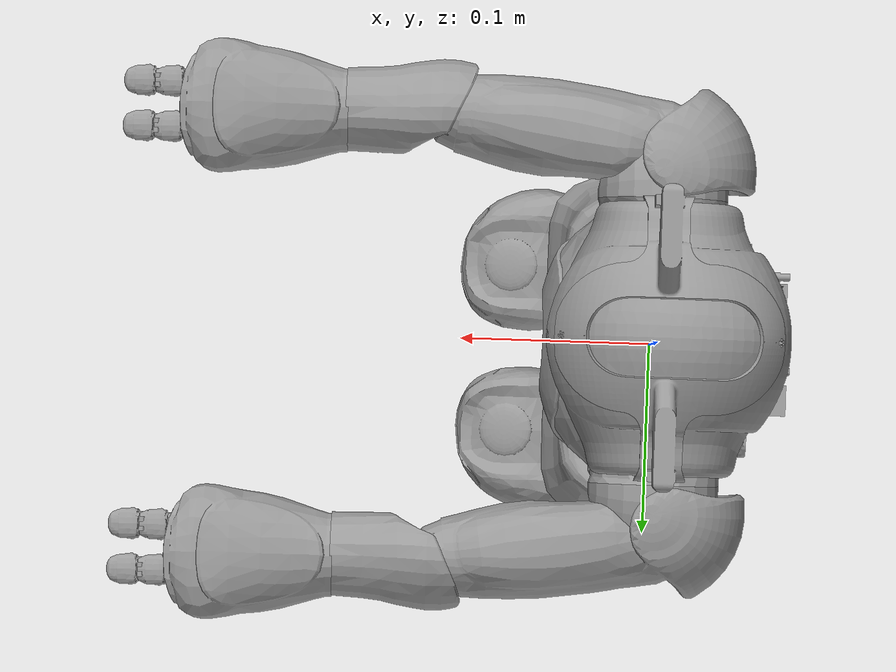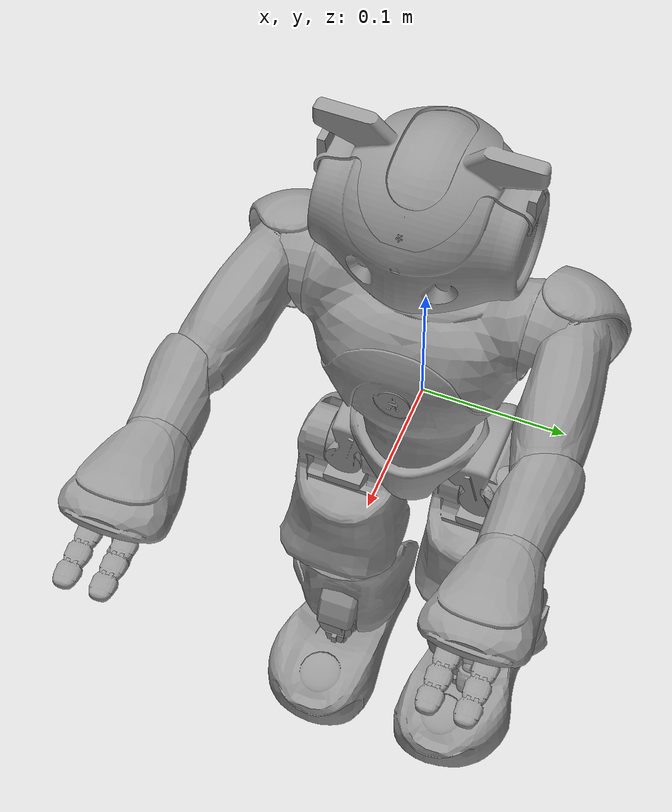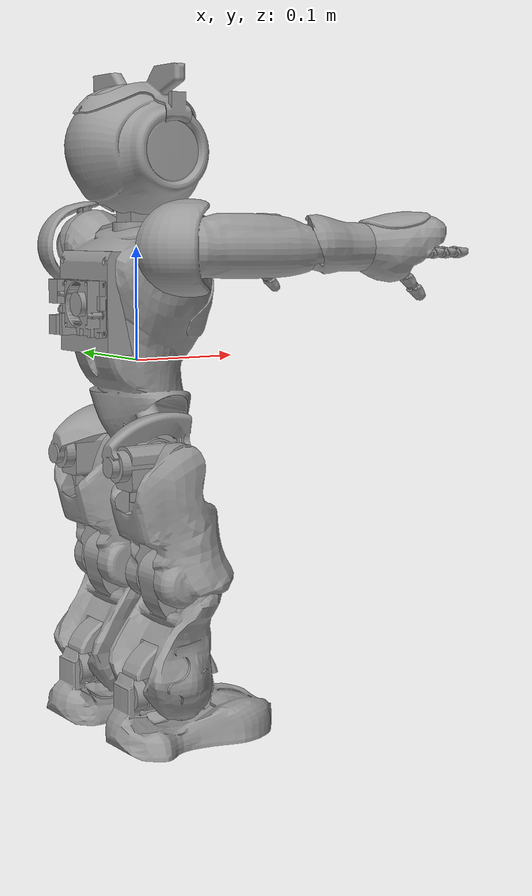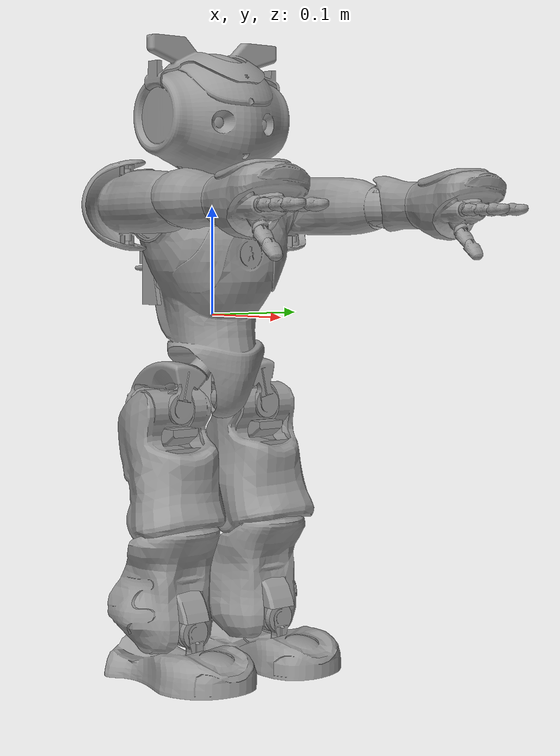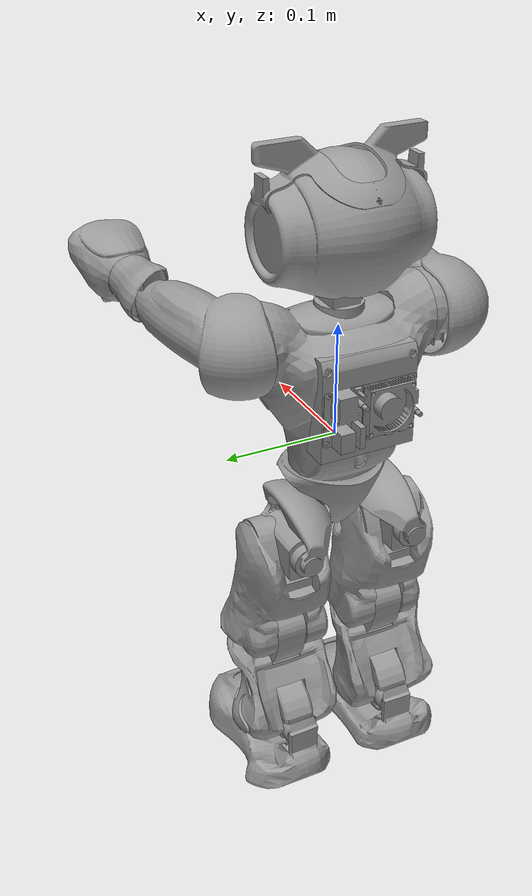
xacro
<?xml version="1.0"?>
<robot name="nao_robot_v4_H21" xmlns:xacro="http://www.ros.org/wiki/xacro">

	<!-- XACRO PROPERTIES -->
	<xacro:property name="H25" value="false" />

	<xacro:include filename="$(find nao_dcm_description)/urdf/nao_dcm_H21_control.xacro" />

	<xacro:include filename="$(find nao_dcm_description)/urdf/modules/robot.xacro" />

</robot>

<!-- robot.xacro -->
<robot xmlns:xacro="http://www.ros.org/wiki/xacro">

	<!-- XACRO PROPERTIES -->
	<xacro:property name="PI" value="3.14159265359" />
	<xacro:property name="PI_2" value="1.57079632679" />
	<xacro:property name="scale" value="0.001" />
	<xacro:property name="nao_meshes" value="true" />
	<xacro:property name="use_helmet" value="true" />
	<xacro:property name="helmet_cameras_viz" value="false" />
	<xacro:property name="use_odroid" value="true" />
	<xacro:property name="use_hector_imu" value="false" />

	<!-- Which IMU plugin to use (hector or default) -->
	<xacro:if value="${use_hector_imu}">
		<xacro:property name="imu_plugin" value="libhector_gazebo_ros_imu.so" />
	</xacro:if>
	<xacro:unless value="${use_hector_imu}">
		<xacro:property name="imu_plugin" value="libgazebo_ros_imu.so" />
	</xacro:unless>

	<xacro:include filename="$(find nao_dcm_description)/urdf/nao_dcm_visuals_collisions.xacro" />
	<xacro:include filename="$(find nao_dcm_description)/urdf/nao_dcm_gazebo.xacro" />

	<!-- Load xacro modules/parts of the robot -->
	<xacro:include filename="$(find nao_dcm_description)/urdf/modules/torso.xacro" />
	<xacro:include filename="$(find nao_dcm_description)/urdf/modules/head.xacro" />
	<xacro:include filename="$(find nao_dcm_description)/urdf/modules/arms.xacro" />
	<xacro:include filename="$(find nao_dcm_description)/urdf/modules/hands.xacro" />
	<xacro:include filename="$(find nao_dcm_description)/urdf/modules/legs.xacro" />
	<xacro:include filename="$(find nao_dcm_description)/urdf/modules/imu.xacro" />
	<xacro:include filename="$(find nao_dcm_description)/urdf/modules/sonars.xacro" />
	<xacro:include filename="$(find nao_dcm_description)/urdf/modules/cameras.xacro" />

	<!-- Whether to use Nao helmet or not -->
	<xacro:if value="${use_helmet}">
		<xacro:include filename="$(find nao_dcm_description)/urdf/modules/helmet.xacro" />
		<xacro:include filename="$(find nao_dcm_description)/urdf/modules/helmet_cameras.xacro" />
	</xacro:if>

	<!-- Whether to use Odroid or not -->
	<xacro:if value="${use_odroid}">
		<xacro:include filename="$(find nao_dcm_description)/urdf/modules/odroid_bag.xacro" />
	</xacro:if>

</robot>

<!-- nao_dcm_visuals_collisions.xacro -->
<robot xmlns:xacro="http://www.ros.org/wiki/xacro">

	<!-- MATERIALS -->
	<material name="Blue">
		<color rgba="0 0 1 1"/>
    </material>

    <material name="Red">
    	<color rgba="1 0 0 1"/>
  	</material>

  	<material name="Green">
        <color rgba="0 1 0 1"/>
	</material>

	<material name="Yellow">
		<color rgba="1 1 0 1"/>
    </material>

    <material name="LightGrey">
    	<color rgba="0.6 0.6 0.6 1.0"/>
	</material>

    <!-- END OF MATERIALS -->

    <!-- XACRO MACROS FOR VISUALS AND COLLISIONS -->

    <xacro:macro name="visuals_collisions_helmet" params="">
		<visual>
			<origin xyz="0 0 0" rpy="0 -0 0"/>
			<geometry>
				<mesh filename="package://nao_dcm_description/meshes/helmet.dae"  scale="${scale} ${scale} ${scale}"/>
			</geometry>
			<material name="LightGrey"/>
		</visual>
		<collision>
			<origin xyz="0 0 0" rpy="0 -0 0"/>
			<geometry>
				<mesh filename="package://nao_dcm_description/meshes/helmet.dae"  scale="${scale} ${scale} ${scale}"/>
			</geometry>
			<material name="LightGrey"/>
		</collision>
	</xacro:macro>

	<xacro:macro name="visuals_collisions_torso" params="">
		<xacro:unless value="${nao_meshes}">
			<visual>
				<origin xyz="0 0 0.02075" rpy="0 0 0"/>
	            <geometry>
	                <box size="0.04 0.1 0.2115"/>
	            </geometry>
				<material name="Blue"/>
			</visual>
			<collision>
				<origin xyz="0 0 0.02075" rpy="0 0 0"/>
	            <geometry>
	                <box size="0.04 0.1 0.2115"/>
	            </geometry>
			</collision>
		</xacro:unless>
		<xacro:if value="${nao_meshes}">
			<visual>
				<origin xyz="0 0 0" rpy="-${PI_2} -0 0"/>
				<geometry>
					<mesh filename="package://nao_meshes/meshes/V40/visual/Torso.dae"  scale="${scale} ${scale} ${scale}"/>
				</geometry>
				<material name="LightGrey"/>
			</visual>
			<collision>
				<origin xyz="0 0 0" rpy="0 -0 0"/>
				<geometry>
					<mesh filename="package://nao_meshes/meshes/V40/collision/Torso.dae"  scale="${scale} ${scale} ${scale}"/>
				</geometry>
				<material name="LightGrey"/>
			</collision>
		</xacro:if>
	</xacro:macro>

	<xacro:macro name="visuals_collisions_head_yaw" params="">
		<xacro:if value="${nao_meshes}">
			<visual>
				<origin xyz="0 0 0" rpy="-${PI_2} -0 0"/>
				<geometry>
					<mesh filename="package://nao_meshes/meshes/V40/visual/HeadYaw.dae"  scale="${scale} ${scale} ${scale}"/>
				</geometry>
				<material name="LightGrey"/>
			</visual>
			<collision>
				<origin xyz="0 0 0" rpy="0 -0 0"/>
				<geometry>
					<mesh filename="package://nao_meshes/meshes/V40/collision/HeadYaw.dae"  scale="${scale} ${scale} ${scale}"/>
				</geometry>
				<material name="LightGrey"/>
			</collision>
		</xacro:if>
	</xacro:macro>

	<xacro:macro name="visuals_collisions_head_pitch" params="">
		<xacro:unless value="${nao_meshes}">
			<visual>
				<origin xyz="0 0 0.058" rpy="${PI_2} 0 0"/>
	            <geometry>
	                <cylinder radius="0.04" length="0.14"/>
	            </geometry>
				<material name="Green"/>
			</visual>
			<collision>
				<origin xyz="0 0 0.058" rpy="${PI_2} 0 0"/>
	            <geometry>
	                <cylinder radius="0.04" length="0.14"/>
	            </geometry>
			</collision>
		</xacro:unless>
		<xacro:if value="${nao_meshes}">
			<visual>
				<origin xyz="0 0 0" rpy="-${PI_2} -0 0"/>
				<geometry>
					<mesh filename="package://nao_meshes/meshes/V40/visual/HeadPitch.dae"  scale="${scale} ${scale} ${scale}"/>
				</geometry>
				<material name="LightGrey"/>
			</visual>
			<collision>
				<origin xyz="0 0 0" rpy="0 -0 0"/>
				<geometry>
					<mesh filename="package://nao_meshes/meshes/V40/collision/HeadPitch.dae"  scale="${scale} ${scale} ${scale}"/>
				</geometry>
				<material name="LightGrey"/>
			</collision>
		</xacro:if>
	</xacro:macro>

	<xacro:macro name="visuals_collisions_shoulder_pitch" params="side">
		<xacro:if value="${nao_meshes}">
			<visual>
				<origin xyz="0 0 0" rpy="-${PI_2} -0 0"/>
				<geometry>
					<mesh filename="package://nao_meshes/meshes/V40/visual/${side}ShoulderPitch.dae"  scale="${scale} ${scale} ${scale}"/>
				</geometry>
				<material name="LightGrey"/>
			</visual>
			<collision>
				<origin xyz="0 0 0" rpy="0 -0 0"/>
				<geometry>
					<mesh filename="package://nao_meshes/meshes/V40/collision/${side}ShoulderPitch.dae"  scale="${scale} ${scale} ${scale}"/>
				</geometry>
				<material name="LightGrey"/>
			</collision>
		</xacro:if>
	</xacro:macro>

	<xacro:macro name="visuals_collisions_shoulder_roll" params="side">
		<xacro:unless value="${nao_meshes}">
			<visual>
				<origin xyz="0.045 0 0" rpy="${PI_2} 0 ${PI_2}"/>
	            <geometry>
	                <cylinder radius="0.02" length="0.09"/>
	            </geometry>
				<material name="Green"/>
			</visual>
			<collision>
				<origin xyz="0.045 0 0" rpy="${PI_2} 0 ${PI_2}"/>
	            <geometry>
	                <cylinder radius="0.02" length="0.09"/>
	            </geometry>
			</collision>
		</xacro:unless>
		<xacro:if value="${nao_meshes}">
			<visual>
				<origin xyz="0 0 0" rpy="-${PI_2} -0 0"/>
				<geometry>
					<mesh filename="package://nao_meshes/meshes/V40/visual/${side}ShoulderRoll.dae"  scale="${scale} ${scale} ${scale}"/>
				</geometry>
				<material name="LightGrey"/>
			</visual>
			<collision>
				<origin xyz="0 0 0" rpy="0 -0 0"/>
				<geometry>
					<mesh filename="package://nao_meshes/meshes/V40/collision/${side}ShoulderRoll.dae"  scale="${scale} ${scale} ${scale}"/>
				</geometry>
				<material name="LightGrey"/>
			</collision>
		</xacro:if>
	</xacro:macro>

	<xacro:macro name="visuals_collisions_elbow_roll" params="side">
		<xacro:unless value="${nao_meshes}">
			<visual>
				<origin xyz="0.025325 0 0" rpy="${PI_2} 0 ${PI_2}"/>
	            <geometry>
	                <cylinder radius="0.02" length="0.05065"/>
	            </geometry>
				<material name="Red"/>
			</visual>
			<collision>
	            <origin xyz="0.025325 0 0" rpy="${PI_2} 0 ${PI_2}"/>
	            <geometry>
	                <cylinder radius="0.02" length="0.05065"/>
	            </geometry>
			</collision>
		</xacro:unless>
		<xacro:if value="${nao_meshes}">
			<visual>
				<origin xyz="0 0 0" rpy="-${PI_2} -0 0"/>
				<geometry>
					<mesh filename="package://nao_meshes/meshes/V40/visual/${side}ElbowRoll.dae"  scale="${scale} ${scale} ${scale}"/>
				</geometry>
				<material name="LightGrey"/>
			</visual>
			<collision>
				<origin xyz="0 0 0" rpy="0 -0 0"/>
				<geometry>
					<mesh filename="package://nao_meshes/meshes/V40/collision/${side}ElbowRoll.dae"  scale="${scale} ${scale} ${scale}"/>
				</geometry>
				<material name="LightGrey"/>
			</collision>
		</xacro:if>
  	</xacro:macro>

  	<xacro:macro name="visuals_collisions_wrist_yaw" params="side reflect">
  		<xacro:unless value="${nao_meshes}">
			<visual>
				<origin xyz="0.029 0 0" rpy="${PI_2} 0 ${PI_2}"/>
	            <geometry>
	                <box size="0.03 0.02 0.058"/>
	            </geometry>
				<material name="Yellow"/>
			</visual>
			<collision>
				<origin xyz="0.029 0 0" rpy="${PI_2} 0 ${PI_2}"/>
	            <geometry>
	                <box size="0.03 0.02 0.058"/>
	            </geometry>
			</collision>
		</xacro:unless>
		<xacro:if value="${nao_meshes}">
			<visual>
				<origin xyz="0 0 0" rpy="-${PI_2} -0 0"/>
				<geometry>
					<mesh filename="package://nao_meshes/meshes/V40/visual/WristYaw.dae"  scale="${scale} ${scale} ${scale}"/>
				</geometry>
				<material name="LightGrey"/>
			</visual>
			<collision>
				<origin xyz="0 0 0" rpy="0 -0 0"/>
				<geometry>
					<mesh filename="package://nao_meshes/meshes/V40/collision/WristYaw.dae"  scale="${scale} ${scale} ${scale}"/>
				</geometry>
				<material name="LightGrey"/>
			</collision>
		</xacro:if>
    </xacro:macro>

    <xacro:macro name="visuals_collisions_phalax" params="side reflect">
    	<xacro:unless value="${nao_meshes}">
			<visual>
				<origin xyz="0.000718 0 0" rpy="${PI_2} 0 ${PI_2}"/>
	            <geometry>
	                <box size="0.01 0.01 0.01436"/>
	            </geometry>
				<material name="Yellow"/>
			</visual>
			<collision>
				<origin xyz="0.000718 0 0" rpy="${PI_2} 0 ${PI_2}"/>
	            <geometry>
	                <box size="0.01 0.01 0.01436"/>
	            </geometry>
			</collision>
		</xacro:unless>
		<xacro:if value="${nao_meshes}">
			<visual>
				<origin xyz="0 0 0" rpy="-${PI_2} -0 0"/>
				<geometry>
					<mesh filename="package://nao_meshes/meshes/V40/visual/Phalax.dae"  scale="${scale} ${scale} ${scale}"/>
				</geometry>
				<material name="LightGrey"/>
			</visual>
			<collision>
				<origin xyz="0 0 0" rpy="0 -0 0"/>
				<geometry>
					<mesh filename="package://nao_meshes/meshes/V40/collision/Phalax.dae"  scale="${scale} ${scale} ${scale}"/>
				</geometry>
				<material name="LightGrey"/>
			</collision>
		</xacro:if>
    </xacro:macro>

    <xacro:macro name="visuals_collisions_phalax_end" params="side reflect">
    	<xacro:unless value="${nao_meshes}">
			<visual>
				<origin xyz="0.000718 0 0" rpy="${PI_2} 0 ${PI_2}"/>
	            <geometry>
	                <box size="0.01 0.01 0.01436"/>
	            </geometry>
				<material name="Yellow"/>
			</visual>
			<collision>
				<origin xyz="0.000718 0 0" rpy="${PI_2} 0 ${PI_2}"/>
	            <geometry>
	                <box size="0.01 0.01 0.01436"/>
	            </geometry>
			</collision>
		</xacro:unless>
		<xacro:if value="${nao_meshes}">
			<visual>
				<origin xyz="0 0 0" rpy="-${PI_2} -0 0"/>
				<geometry>
					<mesh filename="package://nao_meshes/meshes/V40/visual/PhalaxEnd.dae"  scale="${scale} ${scale} ${scale}"/>
				</geometry>
				<material name="LightGrey"/>
			</visual>
			<collision>
				<origin xyz="0 0 0" rpy="0 -0 0"/>
				<geometry>
					<mesh filename="package://nao_meshes/meshes/V40/collision/PhalaxEnd.dae"  scale="${scale} ${scale} ${scale}"/>
				</geometry>
				<material name="LightGrey"/>
			</collision>
		</xacro:if>
    </xacro:macro>

    <xacro:macro name="visuals_collisions_hip_yaw_pitch" params="side reflect">
    	<xacro:if value="${nao_meshes}">
			<visual>
				<origin xyz="0 0 0" rpy="-${PI_2} -0 0"/>
				<geometry>
					<mesh filename="package://nao_meshes/meshes/V40/visual/${side}HipYawPitch.dae"  scale="${scale} ${scale} ${scale}"/>
				</geometry>
				<material name="LightGrey"/>
			</visual>
			<collision>
				<origin xyz="0 0 0" rpy="0 -0 0"/>
				<geometry>
					<mesh filename="package://nao_meshes/meshes/V40/collision/${side}HipYawPitch.dae"  scale="${scale} ${scale} ${scale}"/>
				</geometry>
				<material name="LightGrey"/>
			</collision>
		</xacro:if>
    </xacro:macro>

    <xacro:macro name="visuals_collisions_hip_roll" params="side">
    	<xacro:if value="${nao_meshes}">
			<visual>
				<origin xyz="0 0 0" rpy="-${PI_2} -0 0"/>
				<geometry>
					<mesh filename="package://nao_meshes/meshes/V40/visual/${side}HipRoll.dae"  scale="${scale} ${scale} ${scale}"/>
				</geometry>
				<material name="LightGrey"/>
			</visual>
			<collision>
				<origin xyz="0 0 0" rpy="0 -0 0"/>
				<geometry>
					<mesh filename="package://nao_meshes/meshes/V40/collision/${side}HipRoll.dae"  scale="${scale} ${scale} ${scale}"/>
				</geometry>
				<material name="LightGrey"/>
			</collision>
		</xacro:if>
	</xacro:macro>

	<xacro:macro name="visuals_collisions_hip_pitch" params="side reflect">
		<xacro:unless value="${nao_meshes}">
			<visual>
				<origin xyz="0 0 -0.05" rpy="0 0 0"/>
	            <geometry>
	                <cylinder radius="0.02" length="0.1"/>
	            </geometry>
				<material name="Yellow"/>
			</visual>
			<collision>
				<origin xyz="0 0 -0.05" rpy="0 0 0"/>
	            <geometry>
	                <cylinder radius="0.02" length="0.1"/>
	            </geometry>
			</collision>
		</xacro:unless>
		<xacro:if value="${nao_meshes}">
			<visual>
				<origin xyz="0 0 0" rpy="-${PI_2} -0 0"/>
				<geometry>
					<mesh filename="package://nao_meshes/meshes/V40/visual/${side}HipPitch.dae"  scale="${scale} ${scale} ${scale}"/>
				</geometry>
				<material name="LightGrey"/>
			</visual>
			<collision>
				<origin xyz="0 0 0" rpy="0 -0 0"/>
				<geometry>
					<mesh filename="package://nao_meshes/meshes/V40/collision/${side}HipPitch.dae"  scale="${scale} ${scale} ${scale}"/>
				</geometry>
				<material name="LightGrey"/>
			</collision>
		</xacro:if>
	</xacro:macro>

	<xacro:macro name="visuals_collisions_knee_pitch" params="side reflect">
		<xacro:unless value="${nao_meshes}">
			<visual>
				<origin xyz="0 0 -0.05" rpy="0 0 0"/>
	            <geometry>
	                <cylinder radius="0.02" length="0.1"/>
	            </geometry>
				<material name="Yellow"/>
			</visual>
			<collision>
				<origin xyz="0 0 -0.05" rpy="0 0 0"/>
	            <geometry>
	                <cylinder radius="0.02" length="0.1"/>
	            </geometry>
			</collision>
		</xacro:unless>
		<xacro:if value="${nao_meshes}">
			<visual>
				<origin xyz="0 0 0" rpy="-${PI_2} -0 0"/>
				<geometry>
					<mesh filename="package://nao_meshes/meshes/V40/visual/${side}KneePitch.dae"  scale="${scale} ${scale} ${scale}"/>
				</geometry>
				<material name="LightGrey"/>
			</visual>
			<collision>
				<origin xyz="0 0 0" rpy="0 -0 0"/>
				<geometry>
					<mesh filename="package://nao_meshes/meshes/V40/collision/${side}KneePitch.dae"  scale="${scale} ${scale} ${scale}"/>
				</geometry>
				<material name="LightGrey"/>
			</collision>
		</xacro:if>
	</xacro:macro>

	<xacro:macro name="visuals_collisions_ankle_pitch" params="side">
		<xacro:unless value="${nao_meshes}">
			<visual>
				<origin xyz="0 0 -0.023" rpy="0 0 0"/>
	            <geometry>
	                <cylinder radius="0.02" length="0.046"/>
	            </geometry>
				<material name="Yellow"/>
			</visual>
			<collision>
				<origin xyz="0 0 -0.023" rpy="0 0 0"/>
	            <geometry>
	                <cylinder radius="0.02" length="0.046"/>
	            </geometry>
			</collision>
		</xacro:unless>
		<xacro:if value="${nao_meshes}">
			<visual>
				<origin xyz="0 0 0" rpy="-${PI_2} -0 0"/>
				<geometry>
					<mesh filename="package://nao_meshes/meshes/V40/visual/${side}AnklePitch.dae"  scale="${scale} ${scale} ${scale}"/>
				</geometry>
				<material name="LightGrey"/>
			</visual>
			<collision>
				<origin xyz="0 0 0" rpy="0 -0 0"/>
				<geometry>
					<mesh filename="package://nao_meshes/meshes/V40/collision/${side}AnklePitch.dae"  scale="${scale} ${scale} ${scale}"/>
				</geometry>
				<material name="LightGrey"/>
			</collision>
		</xacro:if>
	</xacro:macro>

	<xacro:macro name="visuals_collisions_ankle_roll" params="side">
		<xacro:unless value="${nao_meshes}">
			<visual>
				<origin xyz="0.02 0 -0.042" rpy="0 0 0"/>
	            <geometry>
	                <box size="0.16 0.08 0.015"/>
	            </geometry>
				<material name="Yellow"/>
			</visual>
			<collision>
	            <origin xyz="0.02 0 -0.042" rpy="0 0 0"/>
	            <geometry>
	                <box size="0.16 0.06 0.015"/>
	            </geometry>
			</collision>
		</xacro:unless>
		<xacro:if value="${nao_meshes}">
			<visual>
				<origin xyz="0 0 0" rpy="-${PI_2} -0 0"/>
				<geometry>
					<mesh filename="package://nao_meshes/meshes/V40/visual/${side}AnkleRoll.dae"  scale="${scale} ${scale} ${scale}"/>
				</geometry>
				<material name="LightGrey"/>
			</visual>
			<collision>
				<origin xyz="0 0 0" rpy="0 -0 0"/>
				<geometry>
					<mesh filename="package://nao_meshes/meshes/V40/collision/${side}AnkleRoll.dae"  scale="${scale} ${scale} ${scale}"/>
				</geometry>
				<material name="LightGrey"/>
			</collision>
		</xacro:if>
	</xacro:macro>

	<!-- END OF XACRO MACROS -->

</robot>

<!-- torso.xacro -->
<robot xmlns:xacro="http://www.ros.org/wiki/xacro">
	<!-- DUMMY ROOT LINK -->
    <link name="base_link"/>
    <joint name="fixed-base" type="fixed">
        <parent link="base_link"/>
        <child link="torso"/>
    </joint>
    <!-- TORSO -->
    <link name="torso">
        <xacro:visuals_collisions_torso/>
        <inertial>
            <!-- CENTER OF MASS -->
            <origin rpy="0 0 0" xyz="-0.00413 0.00009 0.04342"/>
            <mass value="1.04956"/>
            <inertia ixx="0.00506234058" ixy="0.00001431158" ixz="0.00015519082" iyy="0.00488013591" iyz="-0.00002707934" izz="0.00161030006"/>
        </inertial>
    </link>
</robot>

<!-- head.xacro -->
<robot xmlns:xacro="http://www.ros.org/wiki/xacro">
	<!-- TORSO-HEAD JOINT -->
    <joint name="HeadYaw" type="revolute">
        <parent link="torso"/>
        <child link="neck"/>
        <limit effort="${effort_type3*speed_red_type3A}" lower="-2.0857" upper="2.0857" velocity="3.0"/>
        <origin rpy="0 0 0" xyz="0 0 0.1265"/>
        <axis xyz="0 0 1"/>
    </joint>
    <!-- HEAD -->
    <link name="neck">
        <xacro:visuals_collisions_head_yaw/>
        <inertial>
            <!-- CENTER OF MASS -->
            <origin rpy="0 0 0" xyz="-0.00001 0.00014 -0.02742"/>
            <mass value="0.06442"/>
            <inertia ixx="0.00007499295" ixy="0.00000000157" ixz="-0.00000001834" iyy="0.00007599995" iyz="-0.00000005295" izz="0.00000553373"/>
        </inertial>
    </link>
    <joint name="HeadPitch" type="revolute">
        <parent link="neck"/>
        <child link="gaze"/>
        <limit effort="${effort_type3*speed_red_type3B}" lower="-0.6720" upper="0.5149" velocity="3.0"/>
        <origin rpy="0 0 0" xyz="0 0 0"/>
        <axis xyz="0 1 0"/>
    </joint>
    <link name="gaze">
        <xacro:visuals_collisions_head_pitch/>
        <inertial>
            <!-- CENTER OF MASS -->
            <origin rpy="0 0 0" xyz="-0.00112 0.00003 0.05258"/>
            <mass value="0.60533"/>
            <inertia ixx="0.00263129518" ixy="0.00000878814" ixz="0.00004098466" iyy="0.00249112488" iyz="-0.00002995792" izz="0.00098573565"/>
        </inertial>
    </link>
</robot>

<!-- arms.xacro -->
<robot xmlns:xacro="http://www.ros.org/wiki/xacro">
	<!-- ARM LINKS/JOINTS -->
    <!-- Shoulder Roll and Elbow Roll Links are different for the 2 arms -->
    <link name="LShoulderDummy">
        <xacro:visuals_collisions_shoulder_roll side="L"/>
        <inertial>
            <!-- CENTER OF MASS -->
            <origin rpy="0 0 0" xyz="0.02455 0.00563 0.0033"/>
            <mass value="0.15777"/>
            <inertia ixx="0.00009389993" ixy="-0.00004714452" ixz="-0.00002699471" iyy="0.00037151879" iyz="-0.00000245977" izz="0.00034190083"/>
        </inertial>
    </link>
    <link name="RShoulderDummy">
        <xacro:visuals_collisions_shoulder_roll side="R"/>
        <inertial>
            <!-- CENTER OF MASS -->
            <origin rpy="0 0 0" xyz="0.02429 -0.00952 0.00320"/>
            <mass value="0.15974"/>
            <inertia ixx="0.00011012031" ixy="0.00007669131" ixz="-0.00002604607" iyy="0.00036757653" iyz="0.00001209828" izz="0.00035461772"/>
        </inertial>
    </link>
    <link name="LElbowDummy">
        <xacro:visuals_collisions_elbow_roll side="L"/>
        <inertial>
            <!-- CENTER OF MASS -->
            <origin rpy="0 0 0" xyz="0.02556 0.00281 0.00076"/>
            <mass value="0.07761"/>
            <inertia ixx="0.00002533220" ixy="-0.00000234271" ixz="0.00000007459" iyy="0.00008913220" iyz="-0.00000002655" izz="0.00008728726"/>
        </inertial>
    </link>
    <link name="RElbowDummy">
        <xacro:visuals_collisions_elbow_roll side="R"/>
        <inertial>
            <!-- CENTER OF MASS -->
            <origin rpy="0 0 0" xyz="0.02552 -0.00281 0.00090"/>
            <mass value="0.07778"/>
            <inertia ixx="0.00002539070" ixy="0.00000233243" ixz="-0.00000060117" iyy="0.00008922036" iyz="0.00000002694" izz="0.00008724843"/>
        </inertial>
    </link>
    <!-- XACRO -->
    <xacro:macro name="arm_links_joints" params="side reflect">
        <joint name="${side}ShoulderPitch" type="revolute">
            <parent link="torso"/>
            <child link="${side}Shoulder"/>
            <limit effort="${effort_type3*speed_red_type3A}" lower="-2.0857" upper="2.0857" velocity="3.0"/>
            <origin rpy="0 0 0" xyz="0 ${reflect*0.098} 0.1"/>
            <axis xyz="0 1 0"/>
        </joint>
        <link name="${side}Shoulder">
            <xacro:visuals_collisions_shoulder_pitch side="${side}"/>
            <inertial>
                <!-- CENTER OF MASS -->
                <origin rpy="0 0 0" xyz="-0.00165 ${reflect*(-0.02663)} 0.00014"/>
                <mass value="0.07504"/>
                <inertia ixx="0.00008428430" ixy="${reflect*-0.00000202802}" ixz="0.00000002338" iyy="0.00001415561" iyz="${reflect*-0.00000001972}" izz="0.00008641949"/>
            </inertial>
        </link>
        <joint name="${side}ElbowYaw" type="revolute">
            <parent link="${side}ShoulderDummy"/>
            <child link="${side}Elbow"/>
            <limit effort="${effort_type3*speed_red_type3A}" lower="-2.0857" upper="2.0857" velocity="3.0"/>
            <origin rpy="0 0 0" xyz="0.105 ${reflect*0.015} 0"/>
            <axis xyz="1 0 0"/>
        </joint>
        <link name="${side}Elbow">
            <inertial>
                <!-- CENTER OF MASS -->
                <origin rpy="0 0 0" xyz="-0.02744 0 -0.00014"/>
                <mass value="0.06483"/>
                <inertia ixx="0.00000559715" ixy="0.00000000421" ixz="0.00000004319" iyy="0.00007543312" iyz="-0.00000000184" izz="0.00007644339"/>
            </inertial>
        </link>
    </xacro:macro>
    <xacro:arm_links_joints reflect="1" side="L"/>
    <xacro:arm_links_joints reflect="-1" side="R"/>
    <!-- JOINTS THAT ARE NOT IDENTICAL TO 2 ENDS -->
    <joint name="LShoulderRoll" type="revolute">
        <parent link="LShoulder"/>
        <child link="LShoulderDummy"/>
        <limit effort="${effort_type3*speed_red_type3B}" lower="-0.3142" upper="1.3265" velocity="3.0"/>
        <origin rpy="0 0 0" xyz="0 0 0"/>
        <axis xyz="0 0 1"/>
    </joint>
    <joint name="RShoulderRoll" type="revolute">
        <parent link="RShoulder"/>
        <child link="RShoulderDummy"/>
        <limit effort="${effort_type3*speed_red_type3B}" lower="-1.3265" upper="0.3142" velocity="3.0"/>
        <origin rpy="0 0 0" xyz="0 0 0"/>
        <axis xyz="0 0 1"/>
    </joint>
    <joint name="LElbowRoll" type="revolute">
        <parent link="LElbow"/>
        <child link="LElbowDummy"/>
        <limit effort="${effort_type3*speed_red_type3B}" lower="-1.5446" upper="-0.0349" velocity="3.0"/>
        <origin rpy="0 0 0" xyz="0 0 0"/>
        <axis xyz="0 0 1"/>
    </joint>
    <joint name="RElbowRoll" type="revolute">
        <parent link="RElbow"/>
        <child link="RElbowDummy"/>
        <limit effort="${effort_type3*speed_red_type3B}" lower="0.0349" upper="1.5446" velocity="3.0"/>
        <origin rpy="0 0 0" xyz="0 0 0"/>
        <axis xyz="0 0 1"/>
    </joint>
    <!-- END OF ARM LINKS/JOINTS -->
</robot>

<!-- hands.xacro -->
<robot xmlns:xacro="http://www.ros.org/wiki/xacro">

	<!-- Fingers -->
	<xacro:macro name="Finger" params="side num side_small reflect">
		<joint name="${side}Finger${num}" type="revolute">
	    	<parent link="${side_small}_wrist"/>
	    	<child link="${side}Finger${num}1"/>
	    	<origin xyz="0.06907 ${reflect*0.01157} -0.00304" rpy="0 0 0"/>
	    	<axis xyz="0 1 0"/>
	    	<mimic joint="${side}Hand" multiplier="-${PI/4}" offset="${PI/4}"/>
	    	<!-- Dummy values for mimic joint -->
	    	<limit effort="10.0" lower="0.0" upper="${PI/4}" velocity="3.0"/>
	    </joint>
	    <link name="${side}Finger${num}1">
	    	<xacro:visuals_collisions_phalax reflect="-1" side="${side}"/>
	    	<inertial> <!-- dummy values for gazebo -->
	            <mass value="0.2e-5" />
	            <origin xyz="0 0 0"/>
	            <inertia ixx="1e-9" ixy="0" ixz="0" iyy="1e-9" iyz="0" izz="1e-9" />
	        </inertial>
	    </link>
	    <joint name="${side}Finger${num}_1" type="revolute">
	    	<parent link="${side}Finger${num}1"/>
	    	<child link="${side}Finger${num}2"/>
	    	<origin xyz="0.01436 0 0" rpy="0 0 0"/>
	    	<axis xyz="0 1 0"/>
	    	<mimic joint="${side}Hand" multiplier="-${PI/4}" offset="${PI/4}"/>
	    	<!-- Dummy values for mimic joint -->
	    	<limit effort="10.0" lower="0.0" upper="${PI/4}" velocity="3.0"/>
	    </joint>
	    <link name="${side}Finger${num}2">
	    	<xacro:visuals_collisions_phalax reflect="-1" side="${side}"/>
	    	<inertial> <!-- dummy values for gazebo -->
	            <mass value="0.2e-5" />
	            <origin xyz="0 0 0"/>
	            <inertia ixx="1e-9" ixy="0" ixz="0" iyy="1e-9" iyz="0" izz="1e-9" />
	        </inertial>
	    </link>
	    <joint name="${side}Finger${num}_2" type="revolute">
	    	<parent link="${side}Finger${num}2"/>
	    	<child link="${side}Finger${num}3"/>
	    	<origin xyz="0.01436 0 0" rpy="0 0 0"/>
	    	<axis xyz="0 1 0"/>
	    	<mimic joint="${side}Hand" multiplier="-${PI/4}" offset="${PI/4}"/>
	    	<!-- Dummy values for mimic joint -->
	    	<limit effort="10.0" lower="0.0" upper="${PI/4}" velocity="3.0"/>
	    </joint>
	    <link name="${side}Finger${num}3">
	    	<xacro:visuals_collisions_phalax_end reflect="-1" side="${side}"/>
	    	<inertial> <!-- dummy values for gazebo -->
	            <mass value="0.2e-5" />
	            <origin xyz="0 0 0"/>
	            <inertia ixx="1e-9" ixy="0" ixz="0" iyy="1e-9" iyz="0" izz="1e-9" />
	        </inertial>
	    </link>
	</xacro:macro>
	<xacro:Finger side="L" side_small="l" num="1" reflect="1"/>
	<xacro:Finger side="L" side_small="l" num="2" reflect="-1"/>
	<xacro:Finger side="R" side_small="r" num="1" reflect="1"/>
	<xacro:Finger side="R" side_small="r" num="2" reflect="-1"/>
	<!-- Thumbs -->
	<xacro:macro name="Thumb" params="side side_small">
		<joint name="${side}Thumb1_joint" type="revolute">
	    	<parent link="${side_small}_wrist"/>
	    	<child link="${side}Thumb1"/>
	    	<origin xyz="0.04895 0 -0.02638" rpy="${PI} ${PI/4} 0"/>
	    	<axis xyz="0 1 0"/>
	    	<mimic joint="${side}Hand" multiplier="-${PI/4}" offset="${PI/4}"/>
	    	<!-- Dummy values for mimic joint -->
	    	<limit effort="10.0" lower="0.0" upper="${PI/4}" velocity="3.0"/>
	    </joint>
	    <link name="${side}Thumb1">
	    	<xacro:visuals_collisions_phalax reflect="-1" side="${side}"/>
	    	<inertial> <!-- dummy values for gazebo -->
	            <mass value="0.2e-5" />
	            <origin xyz="0 0 0"/>
	            <inertia ixx="1e-9" ixy="0" ixz="0" iyy="1e-9" iyz="0" izz="1e-9" />
	        </inertial>
	    </link>
	    <joint name="${side}Thumb1_2" type="revolute">
	    	<parent link="${side}Thumb1"/>
	    	<child link="${side}Thumb2"/>
	    	<origin xyz="0.01436 0 0" rpy="0 0 0"/>
	    	<axis xyz="0 1 0"/>
	    	<mimic joint="${side}Hand" multiplier="-${PI/4}" offset="${PI/4}"/>
	    	<!-- Dummy values for mimic joint -->
	    	<limit effort="10.0" lower="0.0" upper="${PI/4}" velocity="3.0"/>
	    </joint>
	    <link name="${side}Thumb2">
	    	<xacro:visuals_collisions_phalax_end reflect="-1" side="${side}"/>
	    	<inertial> <!-- dummy values for gazebo -->
	            <mass value="0.2e-5" />
	            <origin xyz="0 0 0"/>
	            <inertia ixx="1e-9" ixy="0" ixz="0" iyy="1e-9" iyz="0" izz="1e-9" />
	        </inertial>
	    </link>
	</xacro:macro>
	<xacro:Thumb side="L" side_small="l"/>
	<xacro:Thumb side="R" side_small="r"/>

	<!-- H25 Hands -->
	<xacro:if value="${H25}">
	    <joint name="LWristYaw" type="revolute">
	        <parent link="LElbowDummy"/>
	        <child link="l_wrist"/>
	        <origin rpy="0 0 0" xyz="0.05595 0 0"/>
	        <limit effort="${50.61*9.4/1000.0}" lower="-1.8238" upper="1.8238" velocity="3.0"/>
	    </joint>
	    <link name="l_wrist">
	        <xacro:visuals_collisions_wrist_yaw reflect="1" side="L"/>
	        <inertial>
	            <!-- CENTER OF MASS -->
	            <origin rpy="0 0 0" xyz="0.03434 -0.00088 0.00308"/>
	            <mass value="0.18533"/>
	            <inertia ixx="0.00007054933" ixy="0.00000571599" ixz="-0.00002247437" iyy="0.00035606232" iyz="0.00000317771" izz="0.00035191933"/>
	        </inertial>
	    </link>
	    <!-- DUMMY REVOLUTE JOINT - JUST THERE TO RETURN VALUES BETWEEN 0.0 AND 1.0 THAT THE ROBOT RETURNS -->
	    <joint name="LHand" type="revolute">
	        <parent link="l_wrist"/>
	        <child link="l_gripper"/>
	        <origin rpy="0 0 0" xyz="0.05775 0 0"/>
	        <limit effort="${36.24*9.4/1000.0}" lower="0.0" upper="1.0" velocity="3.0"/>
	    </joint>
	    <link name="l_gripper">
	        <inertial> <!-- dummy values for gazebo -->
	            <mass value="0.2e-5" />
	            <origin xyz="0 0 0"/>
	            <inertia ixx="1e-9" ixy="0" ixz="0" iyy="1e-9" iyz="0" izz="1e-9" />
	        </inertial>
	    </link>
	    <joint name="RWristYaw" type="revolute">
	        <parent link="RElbowDummy"/>
	        <child link="r_wrist"/>
	        <origin rpy="0 0 0" xyz="0.05595 0 0"/>
	        <limit effort="${50.61*9.4/1000.0}" lower="-1.8238" upper="1.8238" velocity="3.0"/>
	    </joint>
	    <link name="r_wrist">
	        <xacro:visuals_collisions_wrist_yaw reflect="-1" side="R"/>
	        <inertial>
	            <!-- CENTER OF MASS -->
	            <origin rpy="0 0 0" xyz="0.03434 -0.00088 0.00308"/>
	            <mass value="0.18533"/>
	            <inertia ixx="0.00007054933" ixy="0.00000571599" ixz="-0.00002247437" iyy="0.00035606232" iyz="0.00000317771" izz="0.00035191933"/>
	        </inertial>
	    </link>
	    <!-- DUMMY REVOLUTE JOINT - JUST THERE TO RETURN VALUES BETWEEN 0.0 AND 1.0 THAT THE ROBOT RETURNS -->
	    <joint name="RHand" type="revolute">
	        <parent link="r_wrist"/>
	        <child link="r_gripper"/>
	        <origin rpy="0 0 0" xyz="0.05775 0 0"/>
	        <limit effort="${36.24*9.4/1000.0}" lower="0.0" upper="1.0" velocity="3.0"/>
	    </joint>
	    <link name="r_gripper">
	        <inertial> <!-- dummy values for gazebo -->
	            <mass value="0.2e-5" />
	            <origin xyz="0 0 0"/>
	            <inertia ixx="1e-9" ixy="0" ixz="0" iyy="1e-9" iyz="0" izz="1e-9" />
	        </inertial>
	    </link>
	</xacro:if>

	<!-- H21 Hands -->
	<xacro:unless value="${H25}">
	    <joint name="LWristYaw" type="fixed">
	        <parent link="LElbowDummy"/>
	        <child link="l_wrist"/>
	        <origin rpy="0 0 0" xyz="0.05595 0 0"/>
	    </joint>
	    <link name="l_wrist">
	        <xacro:visuals_collisions_wrist_yaw reflect="1" side="L"/>
	        <inertial>
	            <!-- CENTER OF MASS -->
	            <origin rpy="0 0 0" xyz="0.06530 0.00114 0.00051"/>
	            <mass value="0.18415"/>
	            <inertia ixx="0.00007810423" ixy="-0.00001233383" ixz="0.00000744169" iyy="0.00112084378" iyz="-0.00000054551" izz="0.00112214306"/>
	        </inertial>
	    </link>
	    <joint name="RWristYaw" type="fixed">
	        <parent link="RElbowDummy"/>
	        <child link="r_wrist"/>
	        <origin rpy="0 0 0" xyz="0.05595 0 0"/>
	    </joint>
	    <link name="r_wrist">
	        <xacro:visuals_collisions_wrist_yaw reflect="-1" side="R"/>
	        <inertial>
	            <!-- CENTER OF MASS -->
	            <origin rpy="0 0 0" xyz="0.06530 0.00114 0.00051"/>
	            <mass value="0.18415"/>
	            <inertia ixx="0.00007810423" ixy="-0.00001233383" ixz="0.00000744169" iyy="0.00112084378" iyz="-0.00000054551" izz="0.00112214306"/>
	        </inertial>
	    </link>

	    <!-- DUMMY REVOLUTE JOINT FOR NON MOTORED HAND -->
	    <joint name="LHand" type="revolute">
	        <parent link="l_wrist"/>
	        <child link="l_gripper"/>
	        <origin rpy="0 0 0" xyz="0.05775 0 0"/>
	        <limit effort="10.0" lower="0.0" upper="0.0" velocity="3.0"/>
	    </joint>
	    <link name="l_gripper">
	        <inertial> <!-- dummy values for gazebo -->
	            <mass value="0.2e-5" />
	            <origin xyz="0 0 0"/>
	            <inertia ixx="1e-9" ixy="0" ixz="0" iyy="1e-9" iyz="0" izz="1e-9" />
	        </inertial>
	    </link>

	    <!-- DUMMY REVOLUTE JOINT FOR NON MOTORED HAND -->
	    <joint name="RHand" type="revolute">
	        <parent link="r_wrist"/>
	        <child link="r_gripper"/>
	        <origin rpy="0 0 0" xyz="0.05775 0 0"/>
	        <limit effort="10.0" lower="0.0" upper="0.0" velocity="3.0"/>
	    </joint>
	    <link name="r_gripper">
	        <inertial> <!-- dummy values for gazebo -->
	            <mass value="0.2e-5" />
	            <origin xyz="0 0 0"/>
	            <inertia ixx="1e-9" ixy="0" ixz="0" iyy="1e-9" iyz="0" izz="1e-9" />
	        </inertial>
	    </link>
	</xacro:unless>
</robot>

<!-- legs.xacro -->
<robot xmlns:xacro="http://www.ros.org/wiki/xacro">
	<!-- LEFT LEG LINKS/JOINTS -->
    <joint name="LHipYawPitch" type="revolute">
        <parent link="base_link"/>
        <child link="LHipYaw"/>
        <limit effort="${effort_type1*speed_red_type1A}" lower="-1.145303" upper="0.740810" velocity="3.0"/>
        <origin rpy="0 0 0" xyz="0 0.05 -0.085"/>
        <axis xyz="0 0.707106 -0.707106"/>
    </joint>
    <link name="LHipYaw">
        <xacro:visuals_collisions_hip_yaw_pitch reflect="1" side="L"/>
        <inertial>
            <!-- CENTER OF MASS -->
            <origin rpy="0 0 0" xyz="-0.00781 -0.01114 0.02661"/>
            <mass value="0.06981"/>
            <inertia ixx="0.00008150233" ixy="-0.00000499449" ixz="0.00001274817" iyy="0.00010132555" iyz="0.00002345474" izz="0.000062626363"/>
        </inertial>
    </link>
    <joint name="LHipRoll" type="revolute">
        <parent link="LHipYaw"/>
        <child link="LHip"/>
        <limit effort="${effort_type1*speed_red_type1A}" lower="-0.379472" upper="0.790477" velocity="3.0"/>
        <origin rpy="0 0 0" xyz="0 0 0"/>
        <axis xyz="1 0 0"/>
    </joint>
    <link name="LHip">
        <xacro:visuals_collisions_hip_roll side="L"/>
        <inertial>
            <!-- CENTER OF MASS -->
            <origin rpy="0 0 0" xyz="-0.01549 0.00029 -0.00515"/>
            <mass value="0.13053"/>
            <inertia ixx="0.00002758354" ixy="-0.00000002233" ixz="-0.00000408164" iyy="0.00009827055" iyz="-0.00000000419" izz="0.00008809973"/>
        </inertial>
    </link>
    <joint name="LHipPitch" type="revolute">
        <parent link="LHip"/>
        <child link="LHipDummy"/>
        <limit effort="${effort_type1*speed_red_type1B}" lower="-1.535889" upper="0.484090" velocity="3.0"/>
        <origin rpy="0 0 0" xyz="0 0 0"/>
        <axis xyz="0 1 0"/>
    </joint>
    <link name="LHipDummy">
        <xacro:visuals_collisions_hip_pitch reflect="1" side="L"/>
        <inertial>
            <!-- CENTER OF MASS -->
            <origin rpy="0 0 0" xyz="0.00138 0.00221 -0.05373"/>
            <mass value="0.38968"/>
            <inertia ixx="0.00163671962" ixy="0.00000092451" ixz="0.00008530668" iyy="0.00159107278" iyz="0.00003836160" izz="0.00030374342"/>
        </inertial>
    </link>
    <joint name="LKneePitch" type="revolute">
        <parent link="LHipDummy"/>
        <child link="LKnee"/>
        <limit effort="${effort_type1*speed_red_type1B}" lower="-0.092346" upper="2.112528" velocity="3.0"/>
        <origin rpy="0 0 0" xyz="0 0 -0.1"/>
        <axis xyz="0 1 0"/>
    </joint>
    <link name="LKnee">
        <xacro:visuals_collisions_knee_pitch reflect="1" side="L"/>
        <inertial>
            <!-- CENTER OF MASS -->
            <origin rpy="0 0 0" xyz="0.00453 0.00225 -0.04936"/>
            <mass value="0.29142"/>
            <inertia ixx="0.00118207967" ixy="0.00000063362" ixz="0.00003649697" iyy="0.00112865226" iyz="0.00003949523" izz="0.00019322744"/>
        </inertial>
    </link>
    <joint name="LAnklePitch" type="revolute">
        <parent link="LKnee"/>
        <child link="l_ankle"/>
        <limit effort="${effort_type1*speed_red_type1B}" lower="-1.189516" upper="0.922747" velocity="3.0"/>
        <origin rpy="0 0 0" xyz="0 0 -0.1029"/>
        <axis xyz="0 1 0"/>
    </joint>
    <link name="l_ankle">
        <xacro:visuals_collisions_ankle_pitch side="L"/>
        <inertial>
            <!-- CENTER OF MASS -->
            <origin rpy="0 0 0" xyz="0.00045 0.00029 0.00685"/>
            <mass value="0.13416"/>
            <inertia ixx="0.00003850978" ixy="-0.00000002634" ixz="0.00000386194" iyy="0.00007426526" iyz="0.00000001834" izz="0.00005486540"/>
        </inertial>
    </link>
    <joint name="LAnkleRoll" type="revolute">
        <parent link="l_ankle"/>
        <child link="l_sole"/>
        <limit effort="${effort_type1*speed_red_type1A}" lower="-0.397880" upper="0.769001" velocity="3.0"/>
        <origin rpy="0 0 0" xyz="0 0 0"/>
        <axis xyz="1 0 0"/>
    </joint>
    <link name="l_sole">
        <xacro:visuals_collisions_ankle_roll side="L"/>
        <inertial>
            <!-- CENTER OF MASS -->
            <origin rpy="0 0 0" xyz="0.02540 -0.00332 -0.03239"/>
            <mass value="0.16184"/>
            <inertia ixx="0.00026930201" ixy="0.00000587505" ixz="0.00013913328" iyy="0.00064347385" iyz="-0.00001884917" izz="0.00052503477"/>
        </inertial>
    </link>
    <!-- RIGHT LEG LINKS/JOINTS -->
    <joint name="RHipYawPitch" type="revolute">
        <parent link="base_link"/>
        <child link="RHipYaw"/>
        <limit effort="${effort_type1*speed_red_type1A}" lower="-1.145303" upper="0.740810" velocity="3.0"/>
        <origin rpy="0 0 0" xyz="0 -0.05 -0.085"/>
        <axis xyz="0 0.707106 0.707106"/>
        <mimic joint="LHipYawPitch" multiplier="1" offset="0"/>
    </joint>
    <link name="RHipYaw">
        <xacro:visuals_collisions_hip_yaw_pitch reflect="-1" side="R"/>
        <inertial>
            <!-- CENTER OF MASS -->
            <origin rpy="0 0 0" xyz="-0.00766 0.01200 0.02716"/>
            <mass value="0.07118"/>
            <inertia ixx="0.00008997195" ixy="0.00000500219" ixz="0.00001273525" iyy="0.00010552611" iyz="-0.00002770080" izz="0.00006688724"/>
        </inertial>
    </link>
    <joint name="RHipRoll" type="revolute">
        <parent link="RHipYaw"/>
        <child link="RHip"/>
        <limit effort="${effort_type1*speed_red_type1A}" lower="-0.790477" upper="0.379472" velocity="3.0"/>
        <origin rpy="0 0 0" xyz="0 0 0"/>
        <axis xyz="1 0 0"/>
    </joint>
    <link name="RHip">
        <xacro:visuals_collisions_hip_roll side="R"/>
        <inertial>
            <!-- CENTER OF MASS -->
            <origin rpy="0 0 0" xyz="-0.01549 -0.00029 -0.00516"/>
            <mass value="0.13053"/>
            <inertia ixx="0.00002758654" ixy="-0.00000001919" ixz="-0.00000410822" iyy="0.00009826996" iyz="0.00000000251" izz="0.00008810332"/>
        </inertial>
    </link>
    <joint name="RHipPitch" type="revolute">
        <parent link="RHip"/>
        <child link="RHipDummy"/>
        <limit effort="${effort_type1*speed_red_type1B}" lower="-1.535889" upper="0.484090" velocity="3.0"/>
        <origin rpy="0 0 0" xyz="0 0 0"/>
        <axis xyz="0 1 0"/>
    </joint>
    <link name="RHipDummy">
        <xacro:visuals_collisions_hip_pitch reflect="-1" side="R"/>
        <inertial>
            <!-- CENTER OF MASS -->
            <origin rpy="0 0 0" xyz="0.00139 -0.00225 -0.05374"/>
            <mass value="0.38976"/>
            <inertia ixx="0.00163748205" ixy="-0.00000083954" ixz="0.00008588301" iyy="0.00159221403" iyz="-0.00003917626" izz="0.00030397824"/>
        </inertial>
    </link>
    <joint name="RKneePitch" type="revolute">
        <parent link="RHipDummy"/>
        <child link="RKnee"/>
        <limit effort="${effort_type1*speed_red_type1B}" lower="-0.103083" upper="2.120198" velocity="3.0"/>
        <origin rpy="0 0 0" xyz="0 0 -0.1"/>
        <axis xyz="0 1 0"/>
    </joint>
    <link name="RKnee">
        <xacro:visuals_collisions_knee_pitch reflect="-1" side="R"/>
        <inertial>
            <!-- CENTER OF MASS -->
            <origin rpy="0 0 0" xyz="0.00394 -0.00221 -0.04938"/>
            <mass value="0.29163"/>
            <inertia ixx="0.00118282956" ixy="-0.00000089650" ixz="0.00002799690" iyy="0.00112827851" iyz="-0.00003847604" izz="0.00019145277"/>
        </inertial>
    </link>
    <joint name="RAnklePitch" type="revolute">
        <parent link="RKnee"/>
        <child link="r_ankle"/>
        <limit effort="${effort_type1*speed_red_type1B}" lower="-1.186448" upper="0.932056" velocity="3.0"/>
        <origin rpy="0 0 0" xyz="0 0 -0.1029"/>
        <axis xyz="0 1 0"/>
    </joint>
    <link name="r_ankle">
        <xacro:visuals_collisions_ankle_pitch side="R"/>
        <inertial>
            <!-- CENTER OF MASS -->
            <origin rpy="0 0 0" xyz="0.00045 -0.00030 0.00684"/>
            <mass value="0.13415"/>
            <inertia ixx="0.00003850813" ixy="0.00000006434" ixz="0.00000387466" iyy="0.00007431082" iyz="-0.00000000458" izz="0.00005491312"/>
        </inertial>
    </link>
    <joint name="RAnkleRoll" type="revolute">
        <parent link="r_ankle"/>
        <child link="r_sole"/>
        <limit effort="${effort_type1*speed_red_type1A}" lower="-0.768992" upper="0.397935" velocity="3.0"/>
        <origin rpy="0 0 0" xyz="0 0 0"/>
        <axis xyz="1 0 0"/>
    </joint>
    <link name="r_sole">
        <xacro:visuals_collisions_ankle_roll side="R"/>
        <inertial>
            <!-- CENTER OF MASS -->
            <origin rpy="0 0 0" xyz="0.02540 -0.00332 -0.03239"/>
            <mass value="0.16171"/>
            <inertia ixx="0.00026930201" ixy="0.00000587505" ixz="0.00013913328" iyy="0.00064347385" iyz="-0.00001884917" izz="0.00052503477"/>
        </inertial>
    </link>
    <!-- END OF LEG LINKS/JOINTS -->
</robot>

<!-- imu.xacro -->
<robot xmlns:xacro="http://www.ros.org/wiki/xacro">
	<!-- IMU -->
    <joint name="torso-imu" type="fixed">
        <parent link="torso"/>
        <child link="imu"/>
        <!-- Accelerometer -->
        <origin xyz="-0.008 0.00606 0.027" rpy="0 0 0"/>
        <!-- Gyrometer -->
    </joint>
    <link name="imu"/>
</robot>

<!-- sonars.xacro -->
<robot xmlns:xacro="http://www.ros.org/wiki/xacro">
    <!-- SONARS -->
    <!-- Nao has different sonar transmitter and receiver. The correct way is to take the intersection of the 2 cones -->
    <joint name="RightSonar" type="fixed">
        <parent link="torso"/>
        <child link="SonarRight"/>
        <origin xyz="0.0477 -0.0416 0.0509" rpy="0 0.2618 -0.4363"/>
    </joint>
    <link name="SonarRight"/>
    <joint name="LeftSonar" type="fixed">
        <parent link="torso"/>
        <child link="SonarLeft"/>
        <origin xyz="0.0477 0.0416 0.0509" rpy="0 0.2618 0.4363"/>
    </joint>
    <link name="SonarLeft"/>
</robot>

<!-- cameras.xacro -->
<robot xmlns:xacro="http://www.ros.org/wiki/xacro">
	<!-- CAMERAS -->
    <joint name="gaze-top-camera" type="fixed">
    	<parent link="gaze"/>
    	<child link="TopCamera"/>
    	<origin xyz="0.05871 0 0.06364" rpy="0 0.0209 0"/>
    </joint>
    <link name="TopCamera"/>
    <joint name="fixed-top-camera" type="fixed">
        <parent link="TopCamera"/>
        <child link="CameraTop"/>
        <origin xyz="0 0 0" rpy="-${PI_2} 0 -${PI_2}"/>
    </joint>
    <link name="CameraTop"/>
    <joint name="gaze-bottom-camera" type="fixed">
    	<parent link="gaze"/>
    	<child link="BottomCamera"/>
    	<origin xyz="0.05071 0 0.01774" rpy="0 0.6929 0"/>
    </joint>
    <link name="BottomCamera"/>
    <joint name="fixed-bottom-camera" type="fixed">
        <parent link="BottomCamera"/>
        <child link="CameraBottom"/>
        <origin xyz="0 0 0" rpy="-${PI_2} 0 -${PI_2}"/>
    </joint>
    <link name="CameraBottom"/>

    <!-- GAZEBO -->
    <gazebo reference="TopCamera">
        <sensor type="camera" name="CameraTop">
            <update_rate>30.0</update_rate>
            <camera name="head">
                <horizontal_fov>1.06290551</horizontal_fov>
                <image>
                    <width>640</width>
                    <height>480</height>
                    <format>R8G8B8</format>
                </image>
                <clip>
                    <near>0.3</near>
                    <far>500</far>
                </clip>
                <noise>
                    <type>gaussian</type>
                    <mean>0.0</mean>
                    <stddev>0.007</stddev>
                </noise>
            </camera>
            <plugin name="camera_controller" filename="libgazebo_ros_camera.so">
                <alwaysOn>true</alwaysOn>
                <updateRate>0.0</updateRate>
                <cameraName>nao_dcm/CameraTop</cameraName>
                <imageTopicName>image_raw</imageTopicName>
                <cameraInfoTopicName>camera_info</cameraInfoTopicName>
                <frameName>CameraTop</frameName>
                <hackBaseline>0.07</hackBaseline>
                <distortionK1>0.0</distortionK1>
                <distortionK2>0.0</distortionK2>
                <distortionK3>0.0</distortionK3>
                <distortionT1>0.0</distortionT1>
                <distortionT2>0.0</distortionT2>
            </plugin>
        </sensor>
    </gazebo>

    <gazebo reference="BottomCamera">
        <sensor type="camera" name="CameraBottom">
            <update_rate>30.0</update_rate>
            <camera name="head">
                <horizontal_fov>0.834267382</horizontal_fov>
                <image>
                    <width>640</width>
                    <height>480</height>
                    <format>R8G8B8</format>
                </image>
                <clip>
                    <near>0.3</near>
                    <far>500</far>
                </clip>
                <noise>
                    <type>gaussian</type>
                    <mean>0.0</mean>
                    <stddev>0.007</stddev>
                </noise>
            </camera>
            <plugin name="camera_controller" filename="libgazebo_ros_camera.so">
                <alwaysOn>true</alwaysOn>
                <updateRate>0.0</updateRate>
                <cameraName>nao_dcm/CameraBottom</cameraName>
                <imageTopicName>image_raw</imageTopicName>
                <cameraInfoTopicName>camera_info</cameraInfoTopicName>
                <frameName>CameraBottom</frameName>
                <hackBaseline>0.07</hackBaseline>
                <distortionK1>0.0</distortionK1>
                <distortionK2>0.0</distortionK2>
                <distortionK3>0.0</distortionK3>
                <distortionT1>0.0</distortionT1>
                <distortionT2>0.0</distortionT2>
            </plugin>
        </sensor>
    </gazebo>
</robot>

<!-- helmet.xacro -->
<robot xmlns:xacro="http://www.ros.org/wiki/xacro">
	<!-- XACRO MACROS FOR VISUALS AND COLLISIONS -->
	<xacro:macro name="visuals_collisions_helmet" params="">
		<visual>
			<origin xyz="0 0 0" rpy="0 -0 0"/>
			<geometry>
				<mesh filename="package://nao_dcm_description/meshes/helmet.dae"  scale="${scale} ${scale} ${scale}"/>
			</geometry>
			<material name="LightGrey"/>
		</visual>
	</xacro:macro>
	<joint name="head-helmet" type="fixed">
        <parent link="gaze"/>
        <child link="helmet"/>
        <origin xyz="0 0 0.0975" rpy="0 0 0"/>
    </joint>
    <link name="helmet">
        <xacro:visuals_collisions_helmet/>
    </link>
</robot>

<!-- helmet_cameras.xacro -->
<robot xmlns:xacro="http://www.ros.org/wiki/xacro">
	<!-- XACRO MACROS FOR VISUALS AND COLLISIONS -->
    <xacro:macro name="visuals_collisions_left_camera" params="">
    	<xacro:if value="${helmet_cameras_viz}">
			<visual>
				<origin xyz="0 0 0" rpy="${PI_2} 0 ${PI_2}"/>
				<geometry>
					<mesh filename="package://nao_dcm_description/meshes/camera.dae"  scale="${scale} ${scale} ${scale}"/>
				</geometry>
				<material name="LightGrey"/>
			</visual>
			<collision>
				<origin xyz="0 0 0" rpy="${PI_2} 0 ${PI_2}"/>
				<geometry>
					<mesh filename="package://nao_dcm_description/meshes/camera.dae"  scale="${scale} ${scale} ${scale}"/>
				</geometry>
				<material name="LightGrey"/>
			</collision>
		</xacro:if>
	</xacro:macro>

	<xacro:macro name="visuals_collisions_right_camera" params="">
		<xacro:if value="${helmet_cameras_viz}">
			<visual>
				<origin xyz="0 0 0" rpy="${PI_2} 0 ${PI_2}"/>
				<geometry>
					<mesh filename="package://nao_dcm_description/meshes/camera.dae"  scale="${scale} ${scale} ${scale}"/>
				</geometry>
				<material name="LightGrey"/>
			</visual>
			<collision>
				<origin xyz="0 0 0" rpy="${PI_2} 0 ${PI_2}"/>
				<geometry>
					<mesh filename="package://nao_dcm_description/meshes/camera.dae"  scale="${scale} ${scale} ${scale}"/>
				</geometry>
				<material name="LightGrey"/>
			</collision>
		</xacro:if>
	</xacro:macro>
	<!-- HELMET CAMERAS JOINTS -->
	<joint name="helmet-left-camera" type="fixed">
        <parent link="helmet"/>
        <child link="LeftCamera"/>
        <origin xyz="0 ${0.10785/2} ${0.12496-0.0975}" rpy="0 0 0"/>
    </joint>
    <link name="LeftCamera">
        <xacro:visuals_collisions_left_camera/>
        <inertial> <!-- sample values for my cameras -->
            <mass value="0.07" />
            <origin xyz="0 0 0"/>
            <inertia ixx="1e-9" ixy="0" ixz="0" iyy="1e-9" iyz="0" izz="1e-9" />
        </inertial>
    </link>
    <joint name="fixed-left-camera" type="fixed">
        <parent link="LeftCamera"/>
        <child link="CameraLeft"/>
        <origin xyz="0 0 0" rpy="-${PI_2} 0 -${PI_2}"/>
    </joint>
    <link name="CameraLeft"/>
    <joint name="helmet-right-camera" type="fixed">
        <parent link="helmet"/>
        <child link="RightCamera"/>
        <origin xyz="0 -${0.10785/2} ${0.12496-0.0975}" rpy="0 0 0"/>
    </joint>
    <link name="RightCamera">
        <xacro:visuals_collisions_right_camera/>
        <inertial> <!-- sample values for my cameras -->
            <mass value="0.07" />
            <origin xyz="0 0 0"/>
            <inertia ixx="1e-9" ixy="0" ixz="0" iyy="1e-9" iyz="0" izz="1e-9" />
        </inertial>
    </link>
    <joint name="fixed-right-camera" type="fixed">
        <parent link="RightCamera"/>
        <child link="CameraRight"/>
        <origin xyz="0 0 0" rpy="-${PI_2} 0 -${PI_2}"/>
    </joint>
    <link name="CameraRight"/>
    <!-- GAZEBO RELATED PARAMETERS -->
    <!-- DUMMY VALUES - CHANGE TO THE ONES YOUR CAMERAS HAVE -->
    <gazebo reference="LeftCamera">
        <sensor type="camera" name="LeftCamera">
            <update_rate>30.0</update_rate>
            <camera name="left_camera">
                <horizontal_fov>1.06290551</horizontal_fov>
                <image>
                    <width>1280</width>
                    <height>720</height>
                    <format>R8G8B8</format>
                </image>
                <clip>
                    <near>0.3</near>
                    <far>500</far>
                </clip>
                <noise>
                    <type>gaussian</type>
                    <mean>0.0</mean>
                    <stddev>0.007</stddev>
                </noise>
            </camera>
            <plugin name="camera_controller" filename="libgazebo_ros_camera.so">
                <alwaysOn>true</alwaysOn>
                <updateRate>30.0</updateRate>
                <cameraName>nao_dcm/CameraLeft</cameraName>
                <imageTopicName>image_raw</imageTopicName>
                <cameraInfoTopicName>camera_info</cameraInfoTopicName>
                <frameName>CameraLeft</frameName>
                <hackBaseline>0.07</hackBaseline>
                <distortionK1>0.0</distortionK1>
                <distortionK2>0.0</distortionK2>
                <distortionK3>0.0</distortionK3>
                <distortionT1>0.0</distortionT1>
                <distortionT2>0.0</distortionT2>
            </plugin>
        </sensor>
    </gazebo>

    <gazebo reference="RightCamera">
        <sensor type="camera" name="RightCamera">
            <update_rate>30.0</update_rate>
            <camera name="right_camera">
                <horizontal_fov>1.06290551</horizontal_fov>
                <image>
                    <width>1280</width>
                    <height>720</height>
                    <format>R8G8B8</format>
                </image>
                <clip>
                    <near>0.3</near>
                    <far>500</far>
                </clip>
                <noise>
                    <type>gaussian</type>
                    <mean>0.0</mean>
                    <stddev>0.007</stddev>
                </noise>
            </camera>
            <plugin name="camera_controller" filename="libgazebo_ros_camera.so">
                <alwaysOn>true</alwaysOn>
                <updateRate>30.0</updateRate>
                <cameraName>nao_dcm/CameraRight</cameraName>
                <imageTopicName>image_raw</imageTopicName>
                <cameraInfoTopicName>camera_info</cameraInfoTopicName>
                <frameName>CameraRight</frameName>
                <hackBaseline>0.07</hackBaseline>
                <distortionK1>0.0</distortionK1>
                <distortionK2>0.0</distortionK2>
                <distortionK3>0.0</distortionK3>
                <distortionT1>0.0</distortionT1>
                <distortionT2>0.0</distortionT2>
            </plugin>
        </sensor>
    </gazebo>
</robot>

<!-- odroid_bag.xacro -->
<robot xmlns:xacro="http://www.ros.org/wiki/xacro">
	<!-- XACRO MACROS FOR VISUALS AND COLLISIONS -->
    <xacro:macro name="visuals_collisions_odroid_bag" params="">
    	<visual>
			<origin xyz="0 0 0" rpy="0 0 0"/>
			<geometry>
				<mesh filename="package://nao_dcm_description/meshes/odroid_bag.dae"  scale="${scale} ${scale} ${scale}"/>
			</geometry>
			<material name="LightGrey"/>
		</visual>
		<collision>
			<origin xyz="-0.02 0 0" rpy="0 0 0"/>
			<geometry>
				<box size="0.01 0.01 0.01"/>
			</geometry>
			<material name="LightGrey"/>
		</collision>
	</xacro:macro>

	<xacro:macro name="visuals_collisions_odroid" params="">
    	<visual>
			<origin xyz="0 0 0" rpy="0 0 0"/>
			<geometry>
				<mesh filename="package://nao_dcm_description/meshes/odroid.dae"  scale="${scale} ${scale} ${scale}"/>
			</geometry>
			<material name="LightGrey"/>
		</visual>
		<collision>
			<origin xyz="0 0.01 0" rpy="0 0 0"/>
			<geometry>
				<box size="0.01 0.01 0.01"/>
			</geometry>
			<material name="LightGrey"/>
		</collision>
	</xacro:macro>

	<!-- ODROID BAG JOINTS/LINKS -->
	<joint name="torso-odroid" type="fixed">
		<parent link="torso"/>
		<child link="odroid_bag"/>
		<origin xyz="-0.045 0 0.0575" rpy="0 0 0"/>
	</joint>
	<link name="odroid_bag">
		<xacro:visuals_collisions_odroid_bag/>
	</link>
	<joint name="bag-odroid" type="fixed">
		<parent link="odroid_bag"/>
		<child link="odroid"/>
		<origin xyz="-0.014 -0.0055 -0.0052" rpy="0 0 ${PI_2}" />
	</joint>
	<link name="odroid">
		<xacro:visuals_collisions_odroid/>
	</link>
</robot>
